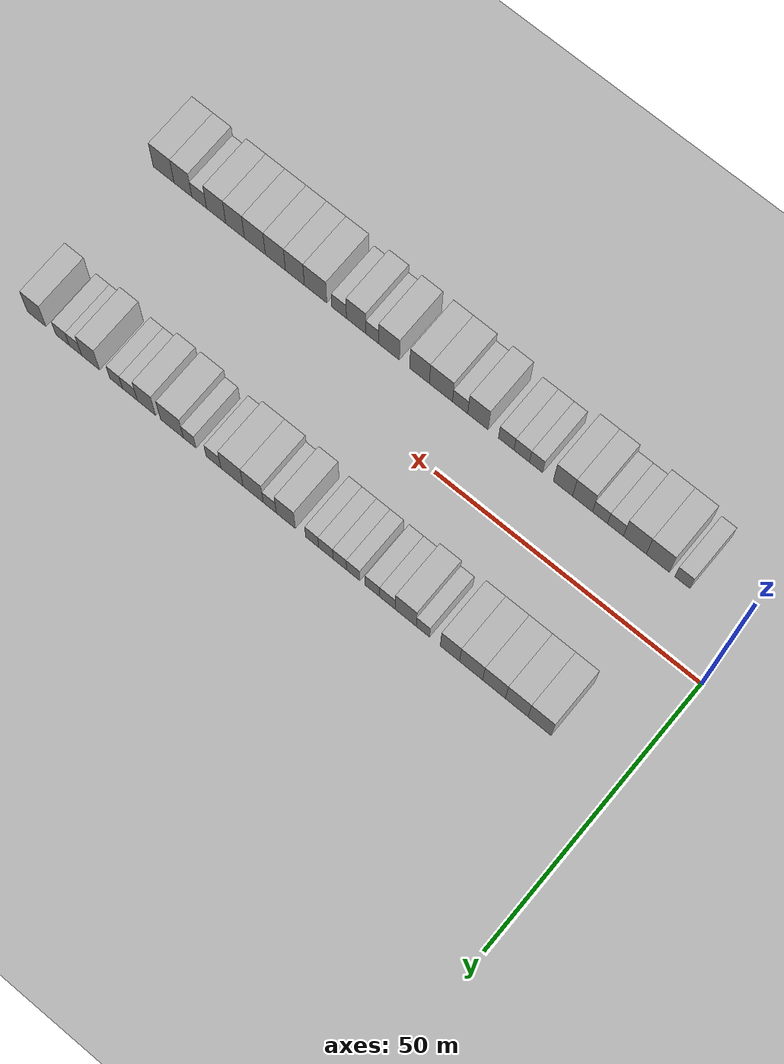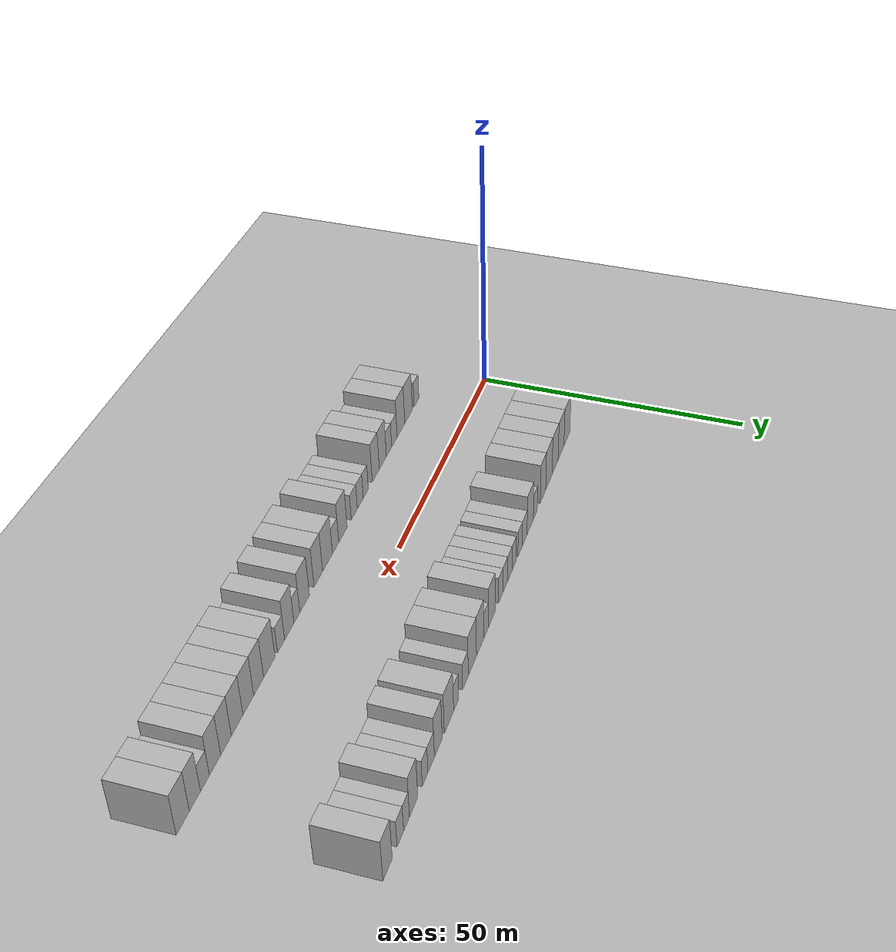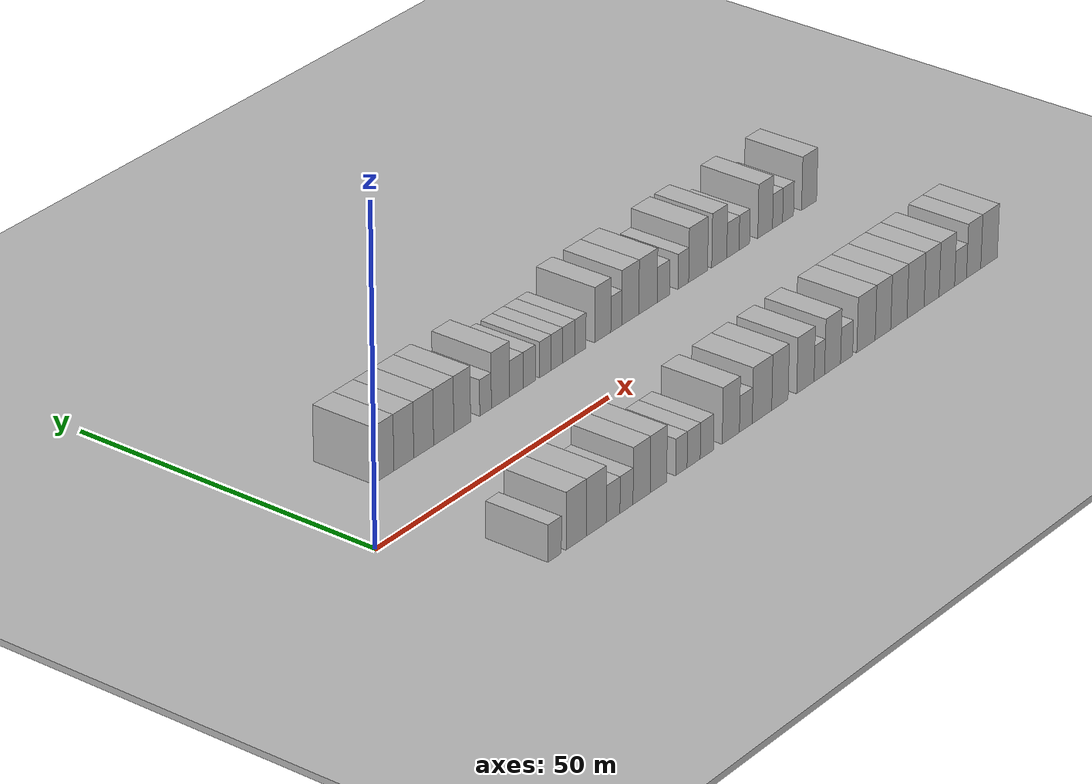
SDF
<sdf version="1.6">
 <world name="default">
  <include><name>ground_plane_1</name><uri>model://HANNAS_ground_plane</uri></include>
  <include>
   <name>ground_plane_2</name>
   <uri>model://HANNAS_ground_plane</uri>
   <pose>100 0 0  0 0 0</pose>
  </include>
  <model name="building_1">
   <static>1</static>
   <pose>14.1433 15.0000 0 0.000000 0.000000 1.570796</pose>
   <link name="link">
    <pose>0 0 4.50 0 0 0</pose>
    <collision name="collision"><geometry><box><size>10.0000 4.2866 9.0000</size></box></geometry></collision>
    <visual name="visual">
     <cast_shadows>0</cast_shadows>
     <geometry><box><size>10.0000 4.2866 9.0000</size></box></geometry>
     <material>
      <script>
       <uri>model://HANNAS_wall/materials/scripts</uri>
       <uri>model://HANNAS_wall/materials/textures</uri>
       <name>vrc/HANNAS_wall</name>
      </script>
     </material>
    </visual>
   </link>
  </model>
  <model name="building_2">
   <static>1</static>
   <pose>18.3812 15.0000 0 0.000000 0.000000 1.570796</pose>
   <link name="link">
    <pose>0 0 4.50 0 0 0</pose>
    <collision name="collision"><geometry><box><size>10.0000 4.1893 9.0000</size></box></geometry></collision>
    <visual name="visual">
     <cast_shadows>0</cast_shadows>
     <geometry><box><size>10.0000 4.1893 9.0000</size></box></geometry>
     <material>
      <script>
       <uri>model://HANNAS_wall/materials/scripts</uri>
       <uri>model://HANNAS_wall/materials/textures</uri>
       <name>vrc/HANNAS_wall</name>
      </script>
     </material>
    </visual>
   </link>
  </model>
  <model name="building_3">
   <static>1</static>
   <pose>22.5935 15.0000 0 0.000000 0.000000 1.570796</pose>
   <link name="link">
    <pose>0 0 4.50 0 0 0</pose>
    <collision name="collision"><geometry><box><size>10.0000 4.2353 9.0000</size></box></geometry></collision>
    <visual name="visual">
     <cast_shadows>0</cast_shadows>
     <geometry><box><size>10.0000 4.2353 9.0000</size></box></geometry>
     <material>
      <script>
       <uri>model://HANNAS_wall/materials/scripts</uri>
       <uri>model://HANNAS_wall/materials/textures</uri>
       <name>vrc/HANNAS_wall</name>
      </script>
     </material>
    </visual>
   </link>
  </model>
  <model name="building_4">
   <static>1</static>
   <pose>26.8650 15.0000 0 0.000000 0.000000 1.570796</pose>
   <link name="link">
    <pose>0 0 4.50 0 0 0</pose>
    <collision name="collision"><geometry><box><size>10.0000 4.3076 9.0000</size></box></geometry></collision>
    <visual name="visual">
     <cast_shadows>0</cast_shadows>
     <geometry><box><size>10.0000 4.3076 9.0000</size></box></geometry>
     <material>
      <script>
       <uri>model://HANNAS_wall/materials/scripts</uri>
       <uri>model://HANNAS_wall/materials/textures</uri>
       <name>vrc/HANNAS_wall</name>
      </script>
     </material>
    </visual>
   </link>
  </model>
  <model name="building_5">
   <static>1</static>
   <pose>30.8387 15.0000 0 0.000000 0.000000 1.570796</pose>
   <link name="link">
    <pose>0 0 4.50 0 0 0</pose>
    <collision name="collision"><geometry><box><size>10.0000 3.6397 9.0000</size></box></geometry></collision>
    <visual name="visual">
     <cast_shadows>0</cast_shadows>
     <geometry><box><size>10.0000 3.6397 9.0000</size></box></geometry>
     <material>
      <script>
       <uri>model://HANNAS_wall/materials/scripts</uri>
       <uri>model://HANNAS_wall/materials/textures</uri>
       <name>vrc/HANNAS_wall</name>
      </script>
     </material>
    </visual>
   </link>
  </model>
  <model name="building_6">
   <static>1</static>
   <pose>35.9202 15.0000 0 0.000000 0.000000 1.570796</pose>
   <link name="link">
    <pose>0 0 3.00 0 0 0</pose>
    <collision name="collision"><geometry><box><size>10.0000 2.5234 6.0000</size></box></geometry></collision>
    <visual name="visual">
     <cast_shadows>0</cast_shadows>
     <geometry><box><size>10.0000 2.5234 6.0000</size></box></geometry>
     <material>
      <script>
       <uri>model://HANNAS_wall/materials/scripts</uri>
       <uri>model://HANNAS_wall/materials/textures</uri>
       <name>vrc/HANNAS_wall</name>
      </script>
     </material>
    </visual>
   </link>
  </model>
  <model name="building_7">
   <static>1</static>
   <pose>39.1829 15.0000 0 0.000000 0.000000 1.570796</pose>
   <link name="link">
    <pose>0 0 4.50 0 0 0</pose>
    <collision name="collision"><geometry><box><size>10.0000 4.0020 9.0000</size></box></geometry></collision>
    <visual name="visual">
     <cast_shadows>0</cast_shadows>
     <geometry><box><size>10.0000 4.0020 9.0000</size></box></geometry>
     <material>
      <script>
       <uri>model://HANNAS_wall/materials/scripts</uri>
       <uri>model://HANNAS_wall/materials/textures</uri>
       <name>vrc/HANNAS_wall</name>
      </script>
     </material>
    </visual>
   </link>
  </model>
  <model name="building_8">
   <static>1</static>
   <pose>42.6572 15.0000 0 0.000000 0.000000 1.570796</pose>
   <link name="link">
    <pose>0 0 3.00 0 0 0</pose>
    <collision name="collision"><geometry><box><size>10.0000 2.9467 6.0000</size></box></geometry></collision>
    <visual name="visual">
     <cast_shadows>0</cast_shadows>
     <geometry><box><size>10.0000 2.9467 6.0000</size></box></geometry>
     <material>
      <script>
       <uri>model://HANNAS_wall/materials/scripts</uri>
       <uri>model://HANNAS_wall/materials/textures</uri>
       <name>vrc/HANNAS_wall</name>
      </script>
     </material>
    </visual>
   </link>
  </model>
  <model name="building_9">
   <static>1</static>
   <pose>45.4963 15.0000 0 0.000000 0.000000 1.570796</pose>
   <link name="link">
    <pose>0 0 3.00 0 0 0</pose>
    <collision name="collision"><geometry><box><size>10.0000 2.7314 6.0000</size></box></geometry></collision>
    <visual name="visual">
     <cast_shadows>0</cast_shadows>
     <geometry><box><size>10.0000 2.7314 6.0000</size></box></geometry>
     <material>
      <script>
       <uri>model://HANNAS_wall/materials/scripts</uri>
       <uri>model://HANNAS_wall/materials/textures</uri>
       <name>vrc/HANNAS_wall</name>
      </script>
     </material>
    </visual>
   </link>
  </model>
  <model name="building_10">
   <static>1</static>
   <pose>49.1422 15.0000 0 0.000000 0.000000 1.570796</pose>
   <link name="link">
    <pose>0 0 3.00 0 0 0</pose>
    <collision name="collision"><geometry><box><size>10.0000 2.5605 6.0000</size></box></geometry></collision>
    <visual name="visual">
     <cast_shadows>0</cast_shadows>
     <geometry><box><size>10.0000 2.5605 6.0000</size></box></geometry>
     <material>
      <script>
       <uri>model://HANNAS_wall/materials/scripts</uri>
       <uri>model://HANNAS_wall/materials/textures</uri>
       <name>vrc/HANNAS_wall</name>
      </script>
     </material>
    </visual>
   </link>
  </model>
  <model name="building_11">
   <static>1</static>
   <pose>51.7119 15.0000 0 0.000000 0.000000 1.570796</pose>
   <link name="link">
    <pose>0 0 3.00 0 0 0</pose>
    <collision name="collision"><geometry><box><size>10.0000 2.5790 6.0000</size></box></geometry></collision>
    <visual name="visual">
     <cast_shadows>0</cast_shadows>
     <geometry><box><size>10.0000 2.5790 6.0000</size></box></geometry>
     <material>
      <script>
       <uri>model://HANNAS_wall/materials/scripts</uri>
       <uri>model://HANNAS_wall/materials/textures</uri>
       <name>vrc/HANNAS_wall</name>
      </script>
     </material>
    </visual>
   </link>
  </model>
  <model name="building_12">
   <static>1</static>
   <pose>54.3860 15.0000 0 0.000000 0.000000 1.570796</pose>
   <link name="link">
    <pose>0 0 3.00 0 0 0</pose>
    <collision name="collision"><geometry><box><size>10.0000 2.7691 6.0000</size></box></geometry></collision>
    <visual name="visual">
     <cast_shadows>0</cast_shadows>
     <geometry><box><size>10.0000 2.7691 6.0000</size></box></geometry>
     <material>
      <script>
       <uri>model://HANNAS_wall/materials/scripts</uri>
       <uri>model://HANNAS_wall/materials/textures</uri>
       <name>vrc/HANNAS_wall</name>
      </script>
     </material>
    </visual>
   </link>
  </model>
  <model name="building_13">
   <static>1</static>
   <pose>57.0139 15.0000 0 0.000000 0.000000 1.570796</pose>
   <link name="link">
    <pose>0 0 3.00 0 0 0</pose>
    <collision name="collision"><geometry><box><size>10.0000 2.4868 6.0000</size></box></geometry></collision>
    <visual name="visual">
     <cast_shadows>0</cast_shadows>
     <geometry><box><size>10.0000 2.4868 6.0000</size></box></geometry>
     <material>
      <script>
       <uri>model://HANNAS_wall/materials/scripts</uri>
       <uri>model://HANNAS_wall/materials/textures</uri>
       <name>vrc/HANNAS_wall</name>
      </script>
     </material>
    </visual>
   </link>
  </model>
  <model name="building_14">
   <static>1</static>
   <pose>62.0946 15.0000 0 0.000000 0.000000 1.570796</pose>
   <link name="link">
    <pose>0 0 4.50 0 0 0</pose>
    <collision name="collision"><geometry><box><size>10.0000 3.6747 9.0000</size></box></geometry></collision>
    <visual name="visual">
     <cast_shadows>0</cast_shadows>
     <geometry><box><size>10.0000 3.6747 9.0000</size></box></geometry>
     <material>
      <script>
       <uri>model://HANNAS_wall/materials/scripts</uri>
       <uri>model://HANNAS_wall/materials/textures</uri>
       <name>vrc/HANNAS_wall</name>
      </script>
     </material>
    </visual>
   </link>
  </model>
  <model name="building_15">
   <static>1</static>
   <pose>65.1895 15.0000 0 0.000000 0.000000 1.570796</pose>
   <link name="link">
    <pose>0 0 3.00 0 0 0</pose>
    <collision name="collision"><geometry><box><size>10.0000 2.5151 6.0000</size></box></geometry></collision>
    <visual name="visual">
     <cast_shadows>0</cast_shadows>
     <geometry><box><size>10.0000 2.5151 6.0000</size></box></geometry>
     <material>
      <script>
       <uri>model://HANNAS_wall/materials/scripts</uri>
       <uri>model://HANNAS_wall/materials/textures</uri>
       <name>vrc/HANNAS_wall</name>
      </script>
     </material>
    </visual>
   </link>
  </model>
  <model name="building_16">
   <static>1</static>
   <pose>68.4266 15.0000 0 0.000000 0.000000 1.570796</pose>
   <link name="link">
    <pose>0 0 4.50 0 0 0</pose>
    <collision name="collision"><geometry><box><size>10.0000 3.9590 9.0000</size></box></geometry></collision>
    <visual name="visual">
     <cast_shadows>0</cast_shadows>
     <geometry><box><size>10.0000 3.9590 9.0000</size></box></geometry>
     <material>
      <script>
       <uri>model://HANNAS_wall/materials/scripts</uri>
       <uri>model://HANNAS_wall/materials/textures</uri>
       <name>vrc/HANNAS_wall</name>
      </script>
     </material>
    </visual>
   </link>
  </model>
  <model name="building_17">
   <static>1</static>
   <pose>72.5462 15.0000 0 0.000000 0.000000 1.570796</pose>
   <link name="link">
    <pose>0 0 4.50 0 0 0</pose>
    <collision name="collision"><geometry><box><size>10.0000 4.2803 9.0000</size></box></geometry></collision>
    <visual name="visual">
     <cast_shadows>0</cast_shadows>
     <geometry><box><size>10.0000 4.2803 9.0000</size></box></geometry>
     <material>
      <script>
       <uri>model://HANNAS_wall/materials/scripts</uri>
       <uri>model://HANNAS_wall/materials/textures</uri>
       <name>vrc/HANNAS_wall</name>
      </script>
     </material>
    </visual>
   </link>
  </model>
  <model name="building_18">
   <static>1</static>
   <pose>76.1411 15.0000 0 0.000000 0.000000 1.570796</pose>
   <link name="link">
    <pose>0 0 3.00 0 0 0</pose>
    <collision name="collision"><geometry><box><size>10.0000 2.9094 6.0000</size></box></geometry></collision>
    <visual name="visual">
     <cast_shadows>0</cast_shadows>
     <geometry><box><size>10.0000 2.9094 6.0000</size></box></geometry>
     <material>
      <script>
       <uri>model://HANNAS_wall/materials/scripts</uri>
       <uri>model://HANNAS_wall/materials/textures</uri>
       <name>vrc/HANNAS_wall</name>
      </script>
     </material>
    </visual>
   </link>
  </model>
  <model name="building_19">
   <static>1</static>
   <pose>80.8462 15.0000 0 0.000000 0.000000 1.570796</pose>
   <link name="link">
    <pose>0 0 3.00 0 0 0</pose>
    <collision name="collision"><geometry><box><size>10.0000 2.5008 6.0000</size></box></geometry></collision>
    <visual name="visual">
     <cast_shadows>0</cast_shadows>
     <geometry><box><size>10.0000 2.5008 6.0000</size></box></geometry>
     <material>
      <script>
       <uri>model://HANNAS_wall/materials/scripts</uri>
       <uri>model://HANNAS_wall/materials/textures</uri>
       <name>vrc/HANNAS_wall</name>
      </script>
     </material>
    </visual>
   </link>
  </model>
  <model name="building_20">
   <static>1</static>
   <pose>84.3462 15.0000 0 0.000000 0.000000 1.570796</pose>
   <link name="link">
    <pose>0 0 4.50 0 0 0</pose>
    <collision name="collision"><geometry><box><size>10.0000 4.4993 9.0000</size></box></geometry></collision>
    <visual name="visual">
     <cast_shadows>0</cast_shadows>
     <geometry><box><size>10.0000 4.4993 9.0000</size></box></geometry>
     <material>
      <script>
       <uri>model://HANNAS_wall/materials/scripts</uri>
       <uri>model://HANNAS_wall/materials/textures</uri>
       <name>vrc/HANNAS_wall</name>
      </script>
     </material>
    </visual>
   </link>
  </model>
  <model name="building_21">
   <static>1</static>
   <pose>89.4073 15.0000 0 0.000000 0.000000 1.570796</pose>
   <link name="link">
    <pose>0 0 4.50 0 0 0</pose>
    <collision name="collision"><geometry><box><size>10.0000 3.6229 9.0000</size></box></geometry></collision>
    <visual name="visual">
     <cast_shadows>0</cast_shadows>
     <geometry><box><size>10.0000 3.6229 9.0000</size></box></geometry>
     <material>
      <script>
       <uri>model://HANNAS_wall/materials/scripts</uri>
       <uri>model://HANNAS_wall/materials/textures</uri>
       <name>vrc/HANNAS_wall</name>
      </script>
     </material>
    </visual>
   </link>
  </model>
  <model name="building_22">
   <static>1</static>
   <pose>92.6987 15.0000 0 0.000000 0.000000 1.570796</pose>
   <link name="link">
    <pose>0 0 3.00 0 0 0</pose>
    <collision name="collision"><geometry><box><size>10.0000 2.9599 6.0000</size></box></geometry></collision>
    <visual name="visual">
     <cast_shadows>0</cast_shadows>
     <geometry><box><size>10.0000 2.9599 6.0000</size></box></geometry>
     <material>
      <script>
       <uri>model://HANNAS_wall/materials/scripts</uri>
       <uri>model://HANNAS_wall/materials/textures</uri>
       <name>vrc/HANNAS_wall</name>
      </script>
     </material>
    </visual>
   </link>
  </model>
  <model name="building_23">
   <static>1</static>
   <pose>95.4585 15.0000 0 0.000000 0.000000 1.570796</pose>
   <link name="link">
    <pose>0 0 3.00 0 0 0</pose>
    <collision name="collision"><geometry><box><size>10.0000 2.5597 6.0000</size></box></geometry></collision>
    <visual name="visual">
     <cast_shadows>0</cast_shadows>
     <geometry><box><size>10.0000 2.5597 6.0000</size></box></geometry>
     <material>
      <script>
       <uri>model://HANNAS_wall/materials/scripts</uri>
       <uri>model://HANNAS_wall/materials/textures</uri>
       <name>vrc/HANNAS_wall</name>
      </script>
     </material>
    </visual>
   </link>
  </model>
  <model name="building_24">
   <static>1</static>
   <pose>100.5434 15.0000 0 0.000000 0.000000 1.570796</pose>
   <link name="link">
    <pose>0 0 4.50 0 0 0</pose>
    <collision name="collision"><geometry><box><size>10.0000 3.6101 9.0000</size></box></geometry></collision>
    <visual name="visual">
     <cast_shadows>0</cast_shadows>
     <geometry><box><size>10.0000 3.6101 9.0000</size></box></geometry>
     <material>
      <script>
       <uri>model://HANNAS_wall/materials/scripts</uri>
       <uri>model://HANNAS_wall/materials/textures</uri>
       <name>vrc/HANNAS_wall</name>
      </script>
     </material>
    </visual>
   </link>
  </model>
  <model name="building_25">
   <static>1</static>
   <pose>103.5877 15.0000 0 0.000000 0.000000 1.570796</pose>
   <link name="link">
    <pose>0 0 3.00 0 0 0</pose>
    <collision name="collision"><geometry><box><size>10.0000 2.4786 6.0000</size></box></geometry></collision>
    <visual name="visual">
     <cast_shadows>0</cast_shadows>
     <geometry><box><size>10.0000 2.4786 6.0000</size></box></geometry>
     <material>
      <script>
       <uri>model://HANNAS_wall/materials/scripts</uri>
       <uri>model://HANNAS_wall/materials/textures</uri>
       <name>vrc/HANNAS_wall</name>
      </script>
     </material>
    </visual>
   </link>
  </model>
  <model name="building_26">
   <static>1</static>
   <pose>106.1811 15.0000 0 0.000000 0.000000 1.570796</pose>
   <link name="link">
    <pose>0 0 3.00 0 0 0</pose>
    <collision name="collision"><geometry><box><size>10.0000 2.7080 6.0000</size></box></geometry></collision>
    <visual name="visual">
     <cast_shadows>0</cast_shadows>
     <geometry><box><size>10.0000 2.7080 6.0000</size></box></geometry>
     <material>
      <script>
       <uri>model://HANNAS_wall/materials/scripts</uri>
       <uri>model://HANNAS_wall/materials/textures</uri>
       <name>vrc/HANNAS_wall</name>
      </script>
     </material>
    </visual>
   </link>
  </model>
  <model name="building_27">
   <static>1</static>
   <pose>111.4133 15.0000 0 0.000000 0.000000 1.570796</pose>
   <link name="link">
    <pose>0 0 4.50 0 0 0</pose>
    <collision name="collision"><geometry><box><size>10.0000 3.7564 9.0000</size></box></geometry></collision>
    <visual name="visual">
     <cast_shadows>0</cast_shadows>
     <geometry><box><size>10.0000 3.7564 9.0000</size></box></geometry>
     <material>
      <script>
       <uri>model://HANNAS_wall/materials/scripts</uri>
       <uri>model://HANNAS_wall/materials/textures</uri>
       <name>vrc/HANNAS_wall</name>
      </script>
     </material>
    </visual>
   </link>
  </model>
  <model name="building_55">
   <static>1</static>
   <pose>11.4036 -15.0000 0 0.000000 0.000000 1.570796</pose>
   <link name="link">
    <pose>0 0 3.00 0 0 0</pose>
    <collision name="collision"><geometry><box><size>10.0000 2.8072 6.0000</size></box></geometry></collision>
    <visual name="visual">
     <cast_shadows>0</cast_shadows>
     <geometry><box><size>10.0000 2.8072 6.0000</size></box></geometry>
     <material>
      <script>
       <uri>model://HANNAS_wall/materials/scripts</uri>
       <uri>model://HANNAS_wall/materials/textures</uri>
       <name>vrc/HANNAS_wall</name>
      </script>
     </material>
    </visual>
   </link>
  </model>
  <model name="building_56">
   <static>1</static>
   <pose>15.9590 -15.0000 0 0.000000 0.000000 1.570796</pose>
   <link name="link">
    <pose>0 0 4.50 0 0 0</pose>
    <collision name="collision"><geometry><box><size>10.0000 4.3037 9.0000</size></box></geometry></collision>
    <visual name="visual">
     <cast_shadows>0</cast_shadows>
     <geometry><box><size>10.0000 4.3037 9.0000</size></box></geometry>
     <material>
      <script>
       <uri>model://HANNAS_wall/materials/scripts</uri>
       <uri>model://HANNAS_wall/materials/textures</uri>
       <name>vrc/HANNAS_wall</name>
      </script>
     </material>
    </visual>
   </link>
  </model>
  <model name="building_57">
   <static>1</static>
   <pose>20.2456 -15.0000 0 0.000000 0.000000 1.570796</pose>
   <link name="link">
    <pose>0 0 4.50 0 0 0</pose>
    <collision name="collision"><geometry><box><size>10.0000 4.2694 9.0000</size></box></geometry></collision>
    <visual name="visual">
     <cast_shadows>0</cast_shadows>
     <geometry><box><size>10.0000 4.2694 9.0000</size></box></geometry>
     <material>
      <script>
       <uri>model://HANNAS_wall/materials/scripts</uri>
       <uri>model://HANNAS_wall/materials/textures</uri>
       <name>vrc/HANNAS_wall</name>
      </script>
     </material>
    </visual>
   </link>
  </model>
  <model name="building_58">
   <static>1</static>
   <pose>23.8735 -15.0000 0 0.000000 0.000000 1.570796</pose>
   <link name="link">
    <pose>0 0 3.00 0 0 0</pose>
    <collision name="collision"><geometry><box><size>10.0000 2.9865 6.0000</size></box></geometry></collision>
    <visual name="visual">
     <cast_shadows>0</cast_shadows>
     <geometry><box><size>10.0000 2.9865 6.0000</size></box></geometry>
     <material>
      <script>
       <uri>model://HANNAS_wall/materials/scripts</uri>
       <uri>model://HANNAS_wall/materials/textures</uri>
       <name>vrc/HANNAS_wall</name>
      </script>
     </material>
    </visual>
   </link>
  </model>
  <model name="building_59">
   <static>1</static>
   <pose>26.7877 -15.0000 0 0.000000 0.000000 1.570796</pose>
   <link name="link">
    <pose>0 0 3.00 0 0 0</pose>
    <collision name="collision"><geometry><box><size>10.0000 2.8418 6.0000</size></box></geometry></collision>
    <visual name="visual">
     <cast_shadows>0</cast_shadows>
     <geometry><box><size>10.0000 2.8418 6.0000</size></box></geometry>
     <material>
      <script>
       <uri>model://HANNAS_wall/materials/scripts</uri>
       <uri>model://HANNAS_wall/materials/textures</uri>
       <name>vrc/HANNAS_wall</name>
      </script>
     </material>
    </visual>
   </link>
  </model>
  <model name="building_60">
   <static>1</static>
   <pose>30.0855 -15.0000 0 0.000000 0.000000 1.570796</pose>
   <link name="link">
    <pose>0 0 4.50 0 0 0</pose>
    <collision name="collision"><geometry><box><size>10.0000 3.7539 9.0000</size></box></geometry></collision>
    <visual name="visual">
     <cast_shadows>0</cast_shadows>
     <geometry><box><size>10.0000 3.7539 9.0000</size></box></geometry>
     <material>
      <script>
       <uri>model://HANNAS_wall/materials/scripts</uri>
       <uri>model://HANNAS_wall/materials/textures</uri>
       <name>vrc/HANNAS_wall</name>
      </script>
     </material>
    </visual>
   </link>
  </model>
  <model name="building_61">
   <static>1</static>
   <pose>33.7828 -15.0000 0 0.000000 0.000000 1.570796</pose>
   <link name="link">
    <pose>0 0 4.50 0 0 0</pose>
    <collision name="collision"><geometry><box><size>10.0000 3.6406 9.0000</size></box></geometry></collision>
    <visual name="visual">
     <cast_shadows>0</cast_shadows>
     <geometry><box><size>10.0000 3.6406 9.0000</size></box></geometry>
     <material>
      <script>
       <uri>model://HANNAS_wall/materials/scripts</uri>
       <uri>model://HANNAS_wall/materials/textures</uri>
       <name>vrc/HANNAS_wall</name>
      </script>
     </material>
    </visual>
   </link>
  </model>
  <model name="building_62">
   <static>1</static>
   <pose>38.8738 -15.0000 0 0.000000 0.000000 1.570796</pose>
   <link name="link">
    <pose>0 0 3.00 0 0 0</pose>
    <collision name="collision"><geometry><box><size>10.0000 2.5413 6.0000</size></box></geometry></collision>
    <visual name="visual">
     <cast_shadows>0</cast_shadows>
     <geometry><box><size>10.0000 2.5413 6.0000</size></box></geometry>
     <material>
      <script>
       <uri>model://HANNAS_wall/materials/scripts</uri>
       <uri>model://HANNAS_wall/materials/textures</uri>
       <name>vrc/HANNAS_wall</name>
      </script>
     </material>
    </visual>
   </link>
  </model>
  <model name="building_63">
   <static>1</static>
   <pose>41.6143 -15.0000 0 0.000000 0.000000 1.570796</pose>
   <link name="link">
    <pose>0 0 3.00 0 0 0</pose>
    <collision name="collision"><geometry><box><size>10.0000 2.9398 6.0000</size></box></geometry></collision>
    <visual name="visual">
     <cast_shadows>0</cast_shadows>
     <geometry><box><size>10.0000 2.9398 6.0000</size></box></geometry>
     <material>
      <script>
       <uri>model://HANNAS_wall/materials/scripts</uri>
       <uri>model://HANNAS_wall/materials/textures</uri>
       <name>vrc/HANNAS_wall</name>
      </script>
     </material>
    </visual>
   </link>
  </model>
  <model name="building_64">
   <static>1</static>
   <pose>44.5669 -15.0000 0 0.000000 0.000000 1.570796</pose>
   <link name="link">
    <pose>0 0 3.00 0 0 0</pose>
    <collision name="collision"><geometry><box><size>10.0000 2.9653 6.0000</size></box></geometry></collision>
    <visual name="visual">
     <cast_shadows>0</cast_shadows>
     <geometry><box><size>10.0000 2.9653 6.0000</size></box></geometry>
     <material>
      <script>
       <uri>model://HANNAS_wall/materials/scripts</uri>
       <uri>model://HANNAS_wall/materials/textures</uri>
       <name>vrc/HANNAS_wall</name>
      </script>
     </material>
    </visual>
   </link>
  </model>
  <model name="building_65">
   <static>1</static>
   <pose>50.0060 -15.0000 0 0.000000 0.000000 1.570796</pose>
   <link name="link">
    <pose>0 0 4.50 0 0 0</pose>
    <collision name="collision"><geometry><box><size>10.0000 3.9129 9.0000</size></box></geometry></collision>
    <visual name="visual">
     <cast_shadows>0</cast_shadows>
     <geometry><box><size>10.0000 3.9129 9.0000</size></box></geometry>
     <material>
      <script>
       <uri>model://HANNAS_wall/materials/scripts</uri>
       <uri>model://HANNAS_wall/materials/textures</uri>
       <name>vrc/HANNAS_wall</name>
      </script>
     </material>
    </visual>
   </link>
  </model>
  <model name="building_66">
   <static>1</static>
   <pose>53.4331 -15.0000 0 0.000000 0.000000 1.570796</pose>
   <link name="link">
    <pose>0 0 3.00 0 0 0</pose>
    <collision name="collision"><geometry><box><size>10.0000 2.9412 6.0000</size></box></geometry></collision>
    <visual name="visual">
     <cast_shadows>0</cast_shadows>
     <geometry><box><size>10.0000 2.9412 6.0000</size></box></geometry>
     <material>
      <script>
       <uri>model://HANNAS_wall/materials/scripts</uri>
       <uri>model://HANNAS_wall/materials/textures</uri>
       <name>vrc/HANNAS_wall</name>
      </script>
     </material>
    </visual>
   </link>
  </model>
  <model name="building_67">
   <static>1</static>
   <pose>57.1453 -15.0000 0 0.000000 0.000000 1.570796</pose>
   <link name="link">
    <pose>0 0 4.50 0 0 0</pose>
    <collision name="collision"><geometry><box><size>10.0000 4.4832 9.0000</size></box></geometry></collision>
    <visual name="visual">
     <cast_shadows>0</cast_shadows>
     <geometry><box><size>10.0000 4.4832 9.0000</size></box></geometry>
     <material>
      <script>
       <uri>model://HANNAS_wall/materials/scripts</uri>
       <uri>model://HANNAS_wall/materials/textures</uri>
       <name>vrc/HANNAS_wall</name>
      </script>
     </material>
    </visual>
   </link>
  </model>
  <model name="building_68">
   <static>1</static>
   <pose>61.2916 -15.0000 0 0.000000 0.000000 1.570796</pose>
   <link name="link">
    <pose>0 0 4.50 0 0 0</pose>
    <collision name="collision"><geometry><box><size>10.0000 3.8095 9.0000</size></box></geometry></collision>
    <visual name="visual">
     <cast_shadows>0</cast_shadows>
     <geometry><box><size>10.0000 3.8095 9.0000</size></box></geometry>
     <material>
      <script>
       <uri>model://HANNAS_wall/materials/scripts</uri>
       <uri>model://HANNAS_wall/materials/textures</uri>
       <name>vrc/HANNAS_wall</name>
      </script>
     </material>
    </visual>
   </link>
  </model>
  <model name="building_69">
   <static>1</static>
   <pose>67.2376 -15.0000 0 0.000000 0.000000 1.570796</pose>
   <link name="link">
    <pose>0 0 4.50 0 0 0</pose>
    <collision name="collision"><geometry><box><size>10.0000 4.0824 9.0000</size></box></geometry></collision>
    <visual name="visual">
     <cast_shadows>0</cast_shadows>
     <geometry><box><size>10.0000 4.0824 9.0000</size></box></geometry>
     <material>
      <script>
       <uri>model://HANNAS_wall/materials/scripts</uri>
       <uri>model://HANNAS_wall/materials/textures</uri>
       <name>vrc/HANNAS_wall</name>
      </script>
     </material>
    </visual>
   </link>
  </model>
  <model name="building_70">
   <static>1</static>
   <pose>70.5162 -15.0000 0 0.000000 0.000000 1.570796</pose>
   <link name="link">
    <pose>0 0 3.00 0 0 0</pose>
    <collision name="collision"><geometry><box><size>10.0000 2.4747 6.0000</size></box></geometry></collision>
    <visual name="visual">
     <cast_shadows>0</cast_shadows>
     <geometry><box><size>10.0000 2.4747 6.0000</size></box></geometry>
     <material>
      <script>
       <uri>model://HANNAS_wall/materials/scripts</uri>
       <uri>model://HANNAS_wall/materials/textures</uri>
       <name>vrc/HANNAS_wall</name>
      </script>
     </material>
    </visual>
   </link>
  </model>
  <model name="building_71">
   <static>1</static>
   <pose>73.6614 -15.0000 0 0.000000 0.000000 1.570796</pose>
   <link name="link">
    <pose>0 0 4.50 0 0 0</pose>
    <collision name="collision"><geometry><box><size>10.0000 3.8158 9.0000</size></box></geometry></collision>
    <visual name="visual">
     <cast_shadows>0</cast_shadows>
     <geometry><box><size>10.0000 3.8158 9.0000</size></box></geometry>
     <material>
      <script>
       <uri>model://HANNAS_wall/materials/scripts</uri>
       <uri>model://HANNAS_wall/materials/textures</uri>
       <name>vrc/HANNAS_wall</name>
      </script>
     </material>
    </visual>
   </link>
  </model>
  <model name="building_72">
   <static>1</static>
   <pose>77.0127 -15.0000 0 0.000000 0.000000 1.570796</pose>
   <link name="link">
    <pose>0 0 3.00 0 0 0</pose>
    <collision name="collision"><geometry><box><size>10.0000 2.8867 6.0000</size></box></geometry></collision>
    <visual name="visual">
     <cast_shadows>0</cast_shadows>
     <geometry><box><size>10.0000 2.8867 6.0000</size></box></geometry>
     <material>
      <script>
       <uri>model://HANNAS_wall/materials/scripts</uri>
       <uri>model://HANNAS_wall/materials/textures</uri>
       <name>vrc/HANNAS_wall</name>
      </script>
     </material>
    </visual>
   </link>
  </model>
  <model name="building_73">
   <static>1</static>
   <pose>81.6741 -15.0000 0 0.000000 0.000000 1.570796</pose>
   <link name="link">
    <pose>0 0 4.50 0 0 0</pose>
    <collision name="collision"><geometry><box><size>10.0000 4.4361 9.0000</size></box></geometry></collision>
    <visual name="visual">
     <cast_shadows>0</cast_shadows>
     <geometry><box><size>10.0000 4.4361 9.0000</size></box></geometry>
     <material>
      <script>
       <uri>model://HANNAS_wall/materials/scripts</uri>
       <uri>model://HANNAS_wall/materials/textures</uri>
       <name>vrc/HANNAS_wall</name>
      </script>
     </material>
    </visual>
   </link>
  </model>
  <model name="building_74">
   <static>1</static>
   <pose>85.7817 -15.0000 0 0.000000 0.000000 1.570796</pose>
   <link name="link">
    <pose>0 0 4.50 0 0 0</pose>
    <collision name="collision"><geometry><box><size>10.0000 3.7792 9.0000</size></box></geometry></collision>
    <visual name="visual">
     <cast_shadows>0</cast_shadows>
     <geometry><box><size>10.0000 3.7792 9.0000</size></box></geometry>
     <material>
      <script>
       <uri>model://HANNAS_wall/materials/scripts</uri>
       <uri>model://HANNAS_wall/materials/textures</uri>
       <name>vrc/HANNAS_wall</name>
      </script>
     </material>
    </visual>
   </link>
  </model>
  <model name="building_75">
   <static>1</static>
   <pose>89.6709 -15.0000 0 0.000000 0.000000 1.570796</pose>
   <link name="link">
    <pose>0 0 4.50 0 0 0</pose>
    <collision name="collision"><geometry><box><size>10.0000 3.9990 9.0000</size></box></geometry></collision>
    <visual name="visual">
     <cast_shadows>0</cast_shadows>
     <geometry><box><size>10.0000 3.9990 9.0000</size></box></geometry>
     <material>
      <script>
       <uri>model://HANNAS_wall/materials/scripts</uri>
       <uri>model://HANNAS_wall/materials/textures</uri>
       <name>vrc/HANNAS_wall</name>
      </script>
     </material>
    </visual>
   </link>
  </model>
  <model name="building_76">
   <static>1</static>
   <pose>93.7685 -15.0000 0 0.000000 0.000000 1.570796</pose>
   <link name="link">
    <pose>0 0 4.50 0 0 0</pose>
    <collision name="collision"><geometry><box><size>10.0000 4.1962 9.0000</size></box></geometry></collision>
    <visual name="visual">
     <cast_shadows>0</cast_shadows>
     <geometry><box><size>10.0000 4.1962 9.0000</size></box></geometry>
     <material>
      <script>
       <uri>model://HANNAS_wall/materials/scripts</uri>
       <uri>model://HANNAS_wall/materials/textures</uri>
       <name>vrc/HANNAS_wall</name>
      </script>
     </material>
    </visual>
   </link>
  </model>
  <model name="building_77">
   <static>1</static>
   <pose>97.7331 -15.0000 0 0.000000 0.000000 1.570796</pose>
   <link name="link">
    <pose>0 0 4.50 0 0 0</pose>
    <collision name="collision"><geometry><box><size>10.0000 3.7330 9.0000</size></box></geometry></collision>
    <visual name="visual">
     <cast_shadows>0</cast_shadows>
     <geometry><box><size>10.0000 3.7330 9.0000</size></box></geometry>
     <material>
      <script>
       <uri>model://HANNAS_wall/materials/scripts</uri>
       <uri>model://HANNAS_wall/materials/textures</uri>
       <name>vrc/HANNAS_wall</name>
      </script>
     </material>
    </visual>
   </link>
  </model>
  <model name="building_78">
   <static>1</static>
   <pose>101.5416 -15.0000 0 0.000000 0.000000 1.570796</pose>
   <link name="link">
    <pose>0 0 4.50 0 0 0</pose>
    <collision name="collision"><geometry><box><size>10.0000 3.8840 9.0000</size></box></geometry></collision>
    <visual name="visual">
     <cast_shadows>0</cast_shadows>
     <geometry><box><size>10.0000 3.8840 9.0000</size></box></geometry>
     <material>
      <script>
       <uri>model://HANNAS_wall/materials/scripts</uri>
       <uri>model://HANNAS_wall/materials/textures</uri>
       <name>vrc/HANNAS_wall</name>
      </script>
     </material>
    </visual>
   </link>
  </model>
  <model name="building_79">
   <static>1</static>
   <pose>104.9791 -15.0000 0 0.000000 0.000000 1.570796</pose>
   <link name="link">
    <pose>0 0 3.00 0 0 0</pose>
    <collision name="collision"><geometry><box><size>10.0000 2.9912 6.0000</size></box></geometry></collision>
    <visual name="visual">
     <cast_shadows>0</cast_shadows>
     <geometry><box><size>10.0000 2.9912 6.0000</size></box></geometry>
     <material>
      <script>
       <uri>model://HANNAS_wall/materials/scripts</uri>
       <uri>model://HANNAS_wall/materials/textures</uri>
       <name>vrc/HANNAS_wall</name>
      </script>
     </material>
    </visual>
   </link>
  </model>
  <model name="building_80">
   <static>1</static>
   <pose>108.2783 -15.0000 0 0.000000 0.000000 1.570796</pose>
   <link name="link">
    <pose>0 0 4.50 0 0 0</pose>
    <collision name="collision"><geometry><box><size>10.0000 3.6073 9.0000</size></box></geometry></collision>
    <visual name="visual">
     <cast_shadows>0</cast_shadows>
     <geometry><box><size>10.0000 3.6073 9.0000</size></box></geometry>
     <material>
      <script>
       <uri>model://HANNAS_wall/materials/scripts</uri>
       <uri>model://HANNAS_wall/materials/textures</uri>
       <name>vrc/HANNAS_wall</name>
      </script>
     </material>
    </visual>
   </link>
  </model>
  <model name="building_81">
   <static>1</static>
   <pose>112.1908 -15.0000 0 0.000000 0.000000 1.570796</pose>
   <link name="link">
    <pose>0 0 4.50 0 0 0</pose>
    <collision name="collision"><geometry><box><size>10.0000 4.2176 9.0000</size></box></geometry></collision>
    <visual name="visual">
     <cast_shadows>0</cast_shadows>
     <geometry><box><size>10.0000 4.2176 9.0000</size></box></geometry>
     <material>
      <script>
       <uri>model://HANNAS_wall/materials/scripts</uri>
       <uri>model://HANNAS_wall/materials/textures</uri>
       <name>vrc/HANNAS_wall</name>
      </script>
     </material>
    </visual>
   </link>
  </model>
 </world>
</sdf>
